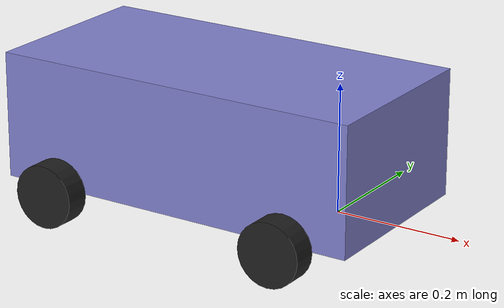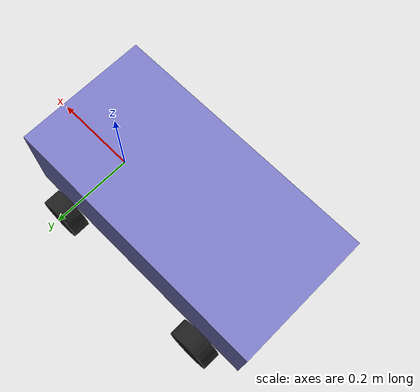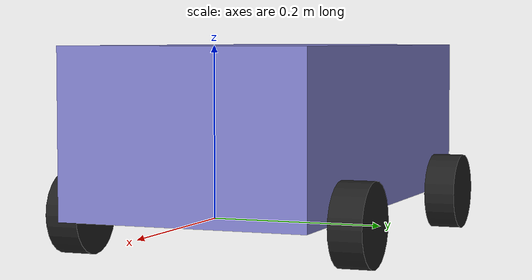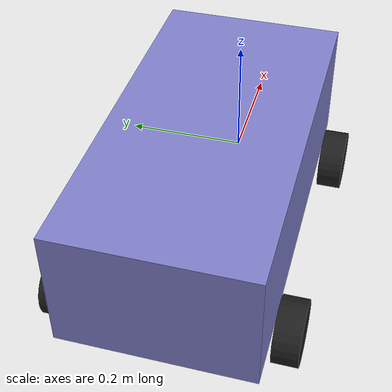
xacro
<?xml version="1.0"?>
<robot xmlns:xacro="http://www.ros.org/wiki/xacro">
    <xacro:include filename="inertial_macros.xacro" />

<!-- adding the variable -->
    <xacro:property name="wheel_radius" value="0.05"/>
    <xacro:property name="wheel_thick" value="0.04"/>

    <material name="white">
        <color rgba="1.0 1.0 1.0 1.0" />
    </material>

    <material name="red">
        <color rgba="1.0 0.2 0.2 1.0" />
    </material>
    <material name="black">
        <color rgba="0 0 0 0" />
    </material>
    <material name="light_blue">
        <color rgba="0.5 0.5 0.8 1.0" />
    </material>

    <!-- base link -->
    <link name="base_link"></link>

    <!-- base_footprint link -->
    <joint name="base_footprint_joint" type="fixed">
        <parent link="base_link"/>
        <child link="base_footprint"/>
        <origin xyz="0.0 0.0 0.0" rpy="0.0 0.0 0.0"/>
    </joint>

    <link name="base_footprint"></link>

    <!-- chassis link -->
    <joint name="chassis_joint" type="fixed">
        <parent link="base_link" />
        <child link="chassis" />
        <origin xyz="0.1 0.0 0.0" />
    </joint>

    <link name="chassis">
        <visual>
            <origin xyz="-0.3 0.0 0.1" />

            <geometry>
                <box size="0.6 0.3 0.2" />
            </geometry>
            <material name="light_blue" />
        </visual>
        <collision>
            <origin xyz="0.3 0.0 0.1" />

            <geometry>
                <box size="0.6 0.3 0.2" />
            </geometry>
                <surface>
        <friction>
            <ode>
                <mu>1.00</mu>   <!-- Reduce friction -->
                <mu2>0.25</mu2> <!-- Reduce friction -->
            </ode>
        </friction>
    </surface>

        </collision>
        <xacro:inertial_box mass="0.5" x="0.6" y="0.3" z="0.2">
            <origin xyz="0.3 0.0 0.1" rpy="0 0 0" />
        </xacro:inertial_box>

    </link>
               <gazebo reference = 'chassis'>
                <material>Gazebo/SkyBlue </material>
            </gazebo>
    <!-- left wheel link -->
    <joint name="left_back_wheel_joint" type="continuous">
        <parent link="base_link" />
        <child link="left_back_wheel" />
        <origin xyz="-0.4 0.175 0.0" rpy="-${pi/2} 0 0" />
        <axis xyz="0.0 0.0 1.0" />
    </joint>

    <link name="left_back_wheel">
        <visual>
            <geometry>
                <cylinder radius="${wheel_radius}" length="0.04" />
                <material name="black" />
            </geometry>
        </visual>
        <collision>

            <geometry>
                <sphere radius="${wheel_radius}"  />
            </geometry>

                <surface>
        <friction>
            <ode>
                <mu>1.00</mu>   <!-- Reduce friction -->
                <mu2>0.25</mu2> <!-- Reduce friction -->
            </ode>
        </friction>
    </surface>

        </collision>
        <xacro:inertial_cylinder mass="0.1" length="0.04" radius="${wheel_radius}">
            <origin xyz="0.0 0.0 0.0" rpy="0.0 0.0 0.0" />
        </xacro:inertial_cylinder>

    </link>
             <gazebo reference = 'left_back_wheel'>
                <material>Gazebo/Black</material>
            </gazebo>

    <!-- right wheel link -->
    <joint name="right_back_wheel_joint" type="continuous">
        <parent link="base_link" />
        <child link="right_back_wheel" />
        <origin xyz="-0.4 -0.175 0.0" rpy="${pi/2} 0 0" />
        <axis xyz="0.0 0.0 -1.0" />

    </joint>

    <link name="right_back_wheel">
        <visual>
            <geometry>
                <cylinder radius="${wheel_radius}" length="0.04" />
                <material name="black" />
            </geometry>
        </visual>

        <collision>
            <geometry>
                <sphere radius="${wheel_radius}"  />
            </geometry>

                <surface>
        <friction>
            <ode>
                <mu>1.00</mu>   <!-- Reduce friction -->
                <mu2>0.25</mu2> <!-- Reduce friction -->
            </ode>
        </friction>
    </surface>

        </collision>
        <xacro:inertial_cylinder mass="0.1" length="0.04" radius="${wheel_radius}">
            <origin xyz="0.0 0.0 0.0" rpy="0.0 0.0 0.0" />
        </xacro:inertial_cylinder>
    </link>
                 <gazebo reference = 'right_back_wheel'>
                <material>Gazebo/Black</material>
            </gazebo>

    <!-- right front wheel link -->
    <joint name="right_front_wheel_joint" type="continuous">
        <parent link="base_link" />
        <child link="right_front_wheel" />
        <origin xyz="0.0 -0.175 0.0" rpy="${pi/2} 0 0" />
        <axis xyz="0.0 0.0 -1.0" />

    </joint>

    <link name="right_front_wheel">
        <visual>
            <geometry>
                <cylinder radius="${wheel_radius}" length="0.04" />
                <material name="black" />
            </geometry>
        </visual>

        <collision>
            <geometry>
                <sphere radius="${wheel_radius}"  />
            </geometry>
        </collision>
        <xacro:inertial_cylinder mass="0.1" length="0.04" radius="${wheel_radius}">
            <origin xyz="0.0 0.0 0.0" rpy="0.0 0.0 0.0" />
        </xacro:inertial_cylinder>
    </link>
                     <gazebo reference = 'right_front_wheel'>
                <material>Gazebo/Black</material>
            </gazebo>

    <!-- left wheel link -->
    <joint name="left_front_wheel_joint" type="continuous">
        <parent link="base_link" />
        <child link="left_front_wheel" />
        <origin xyz="0.0 0.175 0.0" rpy="-${pi/2} 0 0" />
        <axis xyz="0.0 0.0 1.0" />
    </joint>

    <link name="left_front_wheel">
        <visual>
            <geometry>
                <cylinder radius="${wheel_radius}" length="0.04" />
                <material name="black" />
            </geometry>

        </visual>

        <collision>
            <geometry>
                <sphere radius="${wheel_radius}"  />
            </geometry>

                <surface>
        <friction>
            <ode>
                <mu>1.00</mu>   <!-- Reduce friction -->
                <mu2>0.25</mu2> <!-- Reduce friction -->
            </ode>
        </friction>
    </surface>

        </collision>
        <xacro:inertial_cylinder mass="0.1" length="0.04" radius="${wheel_radius}">
            <origin xyz="0.0 0.0 0.0" rpy="0.0 0.0 0.0" />
        </xacro:inertial_cylinder>

    </link>
                         <gazebo reference = 'left_front_wheel'>
                <material>Gazebo/Black</material>
            </gazebo>

</robot>
